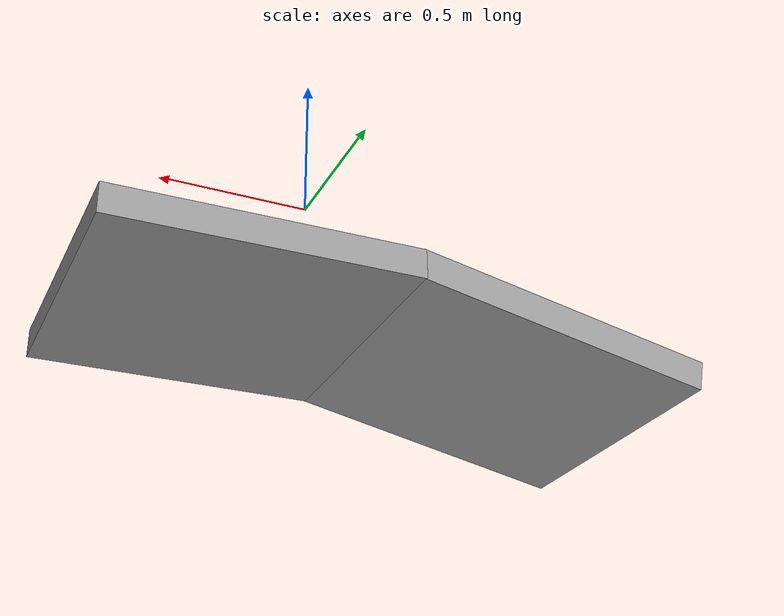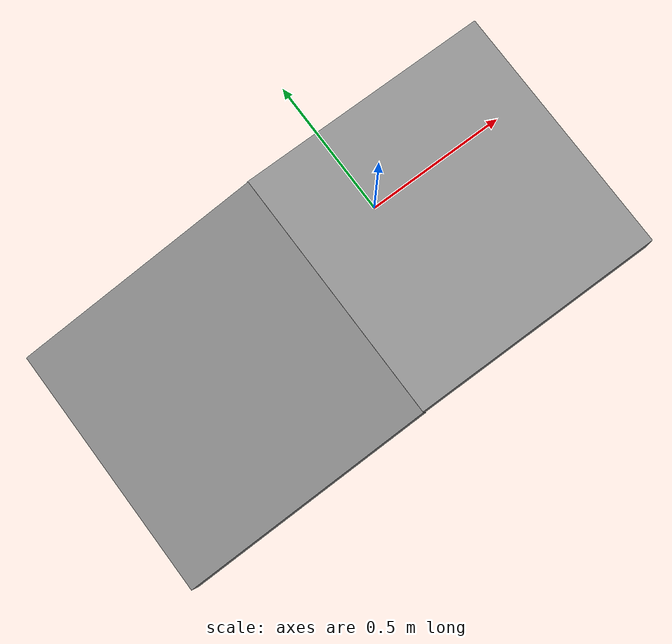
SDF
<?xml version='1.0'?>
<sdf version='1.7'>
  <model name='slope_10degrees'>
    <link name='link'>
      <inertial>
        <mass>1</mass>
        <inertia>
          <ixx>0.166667</ixx>
          <ixy>0</ixy>
          <ixz>0</ixz>
          <iyy>0.166667</iyy>
          <iyz>0</iyz>
          <izz>0.166667</izz>
        </inertia>
        <pose>0 0 0 0 -0 0</pose>
      </inertial>
      <self_collide>0</self_collide>
      <enable_wind>0</enable_wind>
      <kinematic>0</kinematic>
      <pose>0.254891 -0.101997 -0.360126 3.14159 1.56217 3.14159</pose>
      <gravity>1</gravity>
      <visual name='visual'>
        <geometry>
          <box>
            <size>0.1 1 1</size>
          </box>
        </geometry>
        <material>
          <script>
            <name>Gazebo/Grey</name>
            <uri>file://media/materials/scripts/gazebo.material</uri>
          </script>
          <shader type='pixel'>
            <normal_map>__default__</normal_map>
          </shader>
          <ambient>0.3 0.3 0.3 1</ambient>
          <diffuse>0.7 0.7 0.7 1</diffuse>
          <specular>0.01 0.01 0.01 1</specular>
          <emissive>0 0 0 1</emissive>
        </material>
        <pose>0 0 0 0 -0 0</pose>
        <transparency>0</transparency>
        <cast_shadows>1</cast_shadows>
      </visual>
      <collision name='collision'>
        <laser_retro>0</laser_retro>
        <max_contacts>10</max_contacts>
        <pose>0 0 0 0 -0 0</pose>
        <geometry>
          <box>
            <size>0.1 1 1</size>
          </box>
        </geometry>
        <surface>
          <friction>
            <ode>
              <mu>1</mu>
              <mu2>1</mu2>
              <fdir1>0 0 0</fdir1>
              <slip1>0</slip1>
              <slip2>0</slip2>
            </ode>
            <torsional>
              <coefficient>1</coefficient>
              <patch_radius>0</patch_radius>
              <surface_radius>0</surface_radius>
              <use_patch_radius>1</use_patch_radius>
              <ode>
                <slip>0</slip>
              </ode>
            </torsional>
          </friction>
          <bounce>
            <restitution_coefficient>0</restitution_coefficient>
            <threshold>1e+06</threshold>
          </bounce>
          <contact>
            <collide_without_contact>0</collide_without_contact>
            <collide_without_contact_bitmask>1</collide_without_contact_bitmask>
            <collide_bitmask>1</collide_bitmask>
            <ode>
              <soft_cfm>0</soft_cfm>
              <soft_erp>0.2</soft_erp>
              <kp>1e+13</kp>
              <kd>1</kd>
              <max_vel>0.01</max_vel>
              <min_depth>0</min_depth>
            </ode>
            <bullet>
              <split_impulse>1</split_impulse>
              <split_impulse_penetration_threshold>-0.01</split_impulse_penetration_threshold>
              <soft_cfm>0</soft_cfm>
              <soft_erp>0.2</soft_erp>
              <kp>1e+13</kp>
              <kd>1</kd>
            </bullet>
          </contact>
        </surface>
      </collision>
    </link>
    <link name='link_clone'>
      <inertial>
        <mass>1</mass>
        <inertia>
          <ixx>0.166667</ixx>
          <ixy>0</ixy>
          <ixz>0</ixz>
          <iyy>0.166667</iyy>
          <iyz>0</iyz>
          <izz>0.166667</izz>
        </inertia>
        <pose>0 0 0 0 -0 0</pose>
      </inertial>
      <self_collide>0</self_collide>
      <enable_wind>0</enable_wind>
      <kinematic>0</kinematic>
      <pose>-0.720736 -0.104683 -0.451996 0 1.37076 0</pose>
      <gravity>1</gravity>
      <visual name='visual'>
        <geometry>
          <box>
            <size>0.1 1 1</size>
          </box>
        </geometry>
        <material>
          <script>
            <name>Gazebo/Grey</name>
            <uri>file://media/materials/scripts/gazebo.material</uri>
          </script>
          <shader type='pixel'>
            <normal_map>__default__</normal_map>
          </shader>
          <ambient>0.3 0.3 0.3 1</ambient>
          <diffuse>0.7 0.7 0.7 1</diffuse>
          <specular>0.01 0.01 0.01 1</specular>
          <emissive>0 0 0 1</emissive>
        </material>
        <pose>0 0 0 0 -0 0</pose>
        <transparency>0</transparency>
        <cast_shadows>1</cast_shadows>
      </visual>
      <collision name='collision'>
        <laser_retro>0</laser_retro>
        <max_contacts>10</max_contacts>
        <pose>0 0 0 0 -0 0</pose>
        <geometry>
          <box>
            <size>0.1 1 1</size>
          </box>
        </geometry>
        <surface>
          <friction>
            <ode>
              <mu>1</mu>
              <mu2>1</mu2>
              <fdir1>0 0 0</fdir1>
              <slip1>0</slip1>
              <slip2>0</slip2>
            </ode>
            <torsional>
              <coefficient>1</coefficient>
              <patch_radius>0</patch_radius>
              <surface_radius>0</surface_radius>
              <use_patch_radius>1</use_patch_radius>
              <ode>
                <slip>0</slip>
              </ode>
            </torsional>
          </friction>
          <bounce>
            <restitution_coefficient>0</restitution_coefficient>
            <threshold>1e+06</threshold>
          </bounce>
          <contact>
            <collide_without_contact>0</collide_without_contact>
            <collide_without_contact_bitmask>1</collide_without_contact_bitmask>
            <collide_bitmask>1</collide_bitmask>
            <ode>
              <soft_cfm>0</soft_cfm>
              <soft_erp>0.2</soft_erp>
              <kp>1e+13</kp>
              <kd>1</kd>
              <max_vel>0.01</max_vel>
              <min_depth>0</min_depth>
            </ode>
            <bullet>
              <split_impulse>1</split_impulse>
              <split_impulse_penetration_threshold>-0.01</split_impulse_penetration_threshold>
              <soft_cfm>0</soft_cfm>
              <soft_erp>0.2</soft_erp>
              <kp>1e+13</kp>
              <kd>1</kd>
            </bullet>
          </contact>
        </surface>
      </collision>
    </link>
    <static>0</static>
    <allow_auto_disable>1</allow_auto_disable>
    <joint name="world_root" type="fixed">
      <parent>world</parent>
      <child>link</child>
    </joint>
    <joint name="secondlink" type="fixed">
      <parent>link</parent>
      <child>link_clone</child>
    </joint>
  </model>
</sdf>
